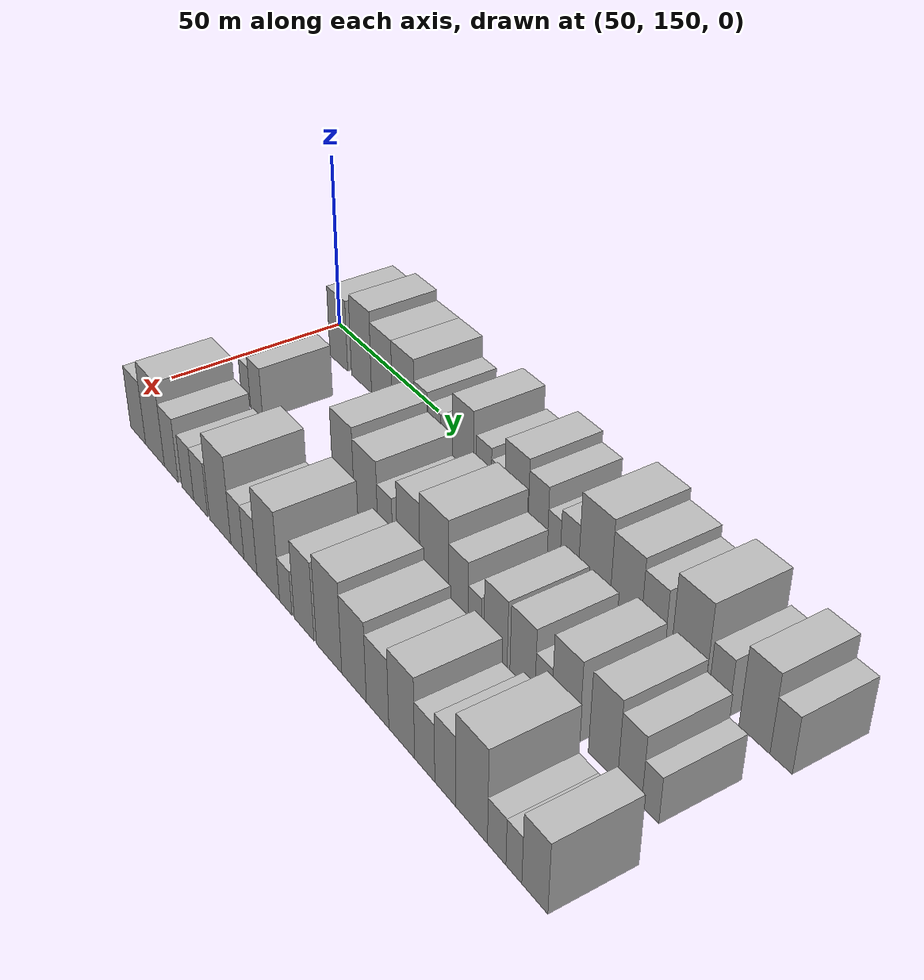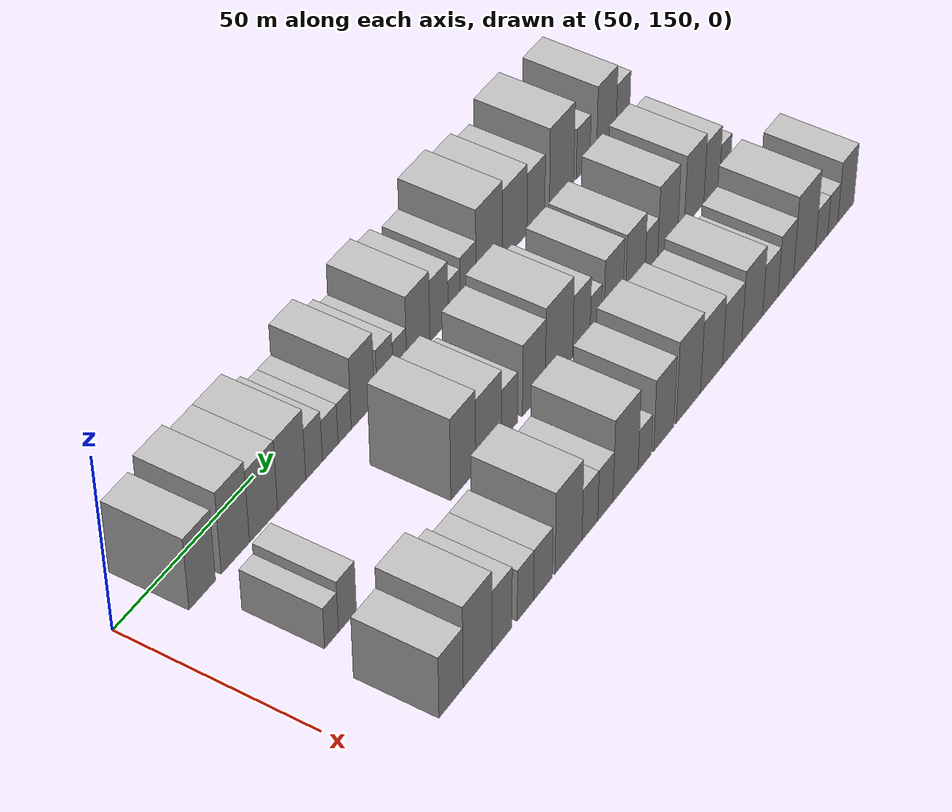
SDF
<sdf version="1.6">
 <world name="default">
  <model name="building_61">
   <static>1</static>
   <pose>50.0000 167.0110 0 0.000000 0.000000 0.000000</pose>
   <link name="link">
    <pose>0 0 10.50 0 0 0</pose>
    <collision name="collision"><geometry><box><size>20.0000 9.3905 21.0000</size></box></geometry></collision>
    <visual name="visual">
     <cast_shadows>0</cast_shadows>
     <geometry><box><size>20.0000 9.3905 21.0000</size></box></geometry>
     <material>
      <script>
       <uri>model://HANNAS_wall/materials/scripts</uri>
       <uri>model://HANNAS_wall/materials/textures</uri>
       <name>vrc/HANNAS_wall</name>
      </script>
     </material>
    </visual>
   </link>
  </model>
  <model name="building_62">
   <static>1</static>
   <pose>50.0000 178.8048 0 0.000000 0.000000 0.000000</pose>
   <link name="link">
    <pose>0 0 12.00 0 0 0</pose>
    <collision name="collision"><geometry><box><size>20.0000 10.1971 24.0000</size></box></geometry></collision>
    <visual name="visual">
     <cast_shadows>0</cast_shadows>
     <geometry><box><size>20.0000 10.1971 24.0000</size></box></geometry>
     <material>
      <script>
       <uri>model://HANNAS_wall/materials/scripts</uri>
       <uri>model://HANNAS_wall/materials/textures</uri>
       <name>vrc/HANNAS_wall</name>
      </script>
     </material>
    </visual>
   </link>
  </model>
  <model name="building_63">
   <static>1</static>
   <pose>50.0000 189.0639 0 0.000000 0.000000 0.000000</pose>
   <link name="link">
    <pose>0 0 10.50 0 0 0</pose>
    <collision name="collision"><geometry><box><size>20.0000 10.3211 21.0000</size></box></geometry></collision>
    <visual name="visual">
     <cast_shadows>0</cast_shadows>
     <geometry><box><size>20.0000 10.3211 21.0000</size></box></geometry>
     <material>
      <script>
       <uri>model://HANNAS_wall/materials/scripts</uri>
       <uri>model://HANNAS_wall/materials/textures</uri>
       <name>vrc/HANNAS_wall</name>
      </script>
     </material>
    </visual>
   </link>
  </model>
  <model name="building_64">
   <static>1</static>
   <pose>50.0000 199.4508 0 0.000000 0.000000 0.000000</pose>
   <link name="link">
    <pose>0 0 10.50 0 0 0</pose>
    <collision name="collision"><geometry><box><size>20.0000 10.4528 21.0000</size></box></geometry></collision>
    <visual name="visual">
     <cast_shadows>0</cast_shadows>
     <geometry><box><size>20.0000 10.4528 21.0000</size></box></geometry>
     <material>
      <script>
       <uri>model://HANNAS_wall/materials/scripts</uri>
       <uri>model://HANNAS_wall/materials/textures</uri>
       <name>vrc/HANNAS_wall</name>
      </script>
     </material>
    </visual>
   </link>
  </model>
  <model name="building_65">
   <static>1</static>
   <pose>50.0000 207.8298 0 0.000000 0.000000 0.000000</pose>
   <link name="link">
    <pose>0 0 7.50 0 0 0</pose>
    <collision name="collision"><geometry><box><size>20.0000 6.3052 15.0000</size></box></geometry></collision>
    <visual name="visual">
     <cast_shadows>0</cast_shadows>
     <geometry><box><size>20.0000 6.3052 15.0000</size></box></geometry>
     <material>
      <script>
       <uri>model://HANNAS_wall/materials/scripts</uri>
       <uri>model://HANNAS_wall/materials/textures</uri>
       <name>vrc/HANNAS_wall</name>
      </script>
     </material>
    </visual>
   </link>
  </model>
  <model name="building_66">
   <static>1</static>
   <pose>50.0000 213.9702 0 0.000000 0.000000 0.000000</pose>
   <link name="link">
    <pose>0 0 6.00 0 0 0</pose>
    <collision name="collision"><geometry><box><size>20.0000 5.9756 12.0000</size></box></geometry></collision>
    <visual name="visual">
     <cast_shadows>0</cast_shadows>
     <geometry><box><size>20.0000 5.9756 12.0000</size></box></geometry>
     <material>
      <script>
       <uri>model://HANNAS_wall/materials/scripts</uri>
       <uri>model://HANNAS_wall/materials/textures</uri>
       <name>vrc/HANNAS_wall</name>
      </script>
     </material>
    </visual>
   </link>
  </model>
  <model name="building_67">
   <static>1</static>
   <pose>50.0000 219.5075 0 0.000000 0.000000 0.000000</pose>
   <link name="link">
    <pose>0 0 6.00 0 0 0</pose>
    <collision name="collision"><geometry><box><size>20.0000 5.0991 12.0000</size></box></geometry></collision>
    <visual name="visual">
     <cast_shadows>0</cast_shadows>
     <geometry><box><size>20.0000 5.0991 12.0000</size></box></geometry>
     <material>
      <script>
       <uri>model://HANNAS_wall/materials/scripts</uri>
       <uri>model://HANNAS_wall/materials/textures</uri>
       <name>vrc/HANNAS_wall</name>
      </script>
     </material>
    </visual>
   </link>
  </model>
  <model name="building_68">
   <static>1</static>
   <pose>50.0000 226.5894 0 0.000000 0.000000 0.000000</pose>
   <link name="link">
    <pose>0 0 10.50 0 0 0</pose>
    <collision name="collision"><geometry><box><size>20.0000 9.0648 21.0000</size></box></geometry></collision>
    <visual name="visual">
     <cast_shadows>0</cast_shadows>
     <geometry><box><size>20.0000 9.0648 21.0000</size></box></geometry>
     <material>
      <script>
       <uri>model://HANNAS_wall/materials/scripts</uri>
       <uri>model://HANNAS_wall/materials/textures</uri>
       <name>vrc/HANNAS_wall</name>
      </script>
     </material>
    </visual>
   </link>
  </model>
  <model name="building_69">
   <static>1</static>
   <pose>50.0000 235.3108 0 0.000000 0.000000 0.000000</pose>
   <link name="link">
    <pose>0 0 7.50 0 0 0</pose>
    <collision name="collision"><geometry><box><size>20.0000 6.3780 15.0000</size></box></geometry></collision>
    <visual name="visual">
     <cast_shadows>0</cast_shadows>
     <geometry><box><size>20.0000 6.3780 15.0000</size></box></geometry>
     <material>
      <script>
       <uri>model://HANNAS_wall/materials/scripts</uri>
       <uri>model://HANNAS_wall/materials/textures</uri>
       <name>vrc/HANNAS_wall</name>
      </script>
     </material>
    </visual>
   </link>
  </model>
  <model name="building_70">
   <static>1</static>
   <pose>50.0000 241.2170 0 0.000000 0.000000 0.000000</pose>
   <link name="link">
    <pose>0 0 6.00 0 0 0</pose>
    <collision name="collision"><geometry><box><size>20.0000 5.4345 12.0000</size></box></geometry></collision>
    <visual name="visual">
     <cast_shadows>0</cast_shadows>
     <geometry><box><size>20.0000 5.4345 12.0000</size></box></geometry>
     <material>
      <script>
       <uri>model://HANNAS_wall/materials/scripts</uri>
       <uri>model://HANNAS_wall/materials/textures</uri>
       <name>vrc/HANNAS_wall</name>
      </script>
     </material>
    </visual>
   </link>
  </model>
  <model name="building_71">
   <static>1</static>
   <pose>50.0000 248.6540 0 0.000000 0.000000 0.000000</pose>
   <link name="link">
    <pose>0 0 10.50 0 0 0</pose>
    <collision name="collision"><geometry><box><size>20.0000 9.4393 21.0000</size></box></geometry></collision>
    <visual name="visual">
     <cast_shadows>0</cast_shadows>
     <geometry><box><size>20.0000 9.4393 21.0000</size></box></geometry>
     <material>
      <script>
       <uri>model://HANNAS_wall/materials/scripts</uri>
       <uri>model://HANNAS_wall/materials/textures</uri>
       <name>vrc/HANNAS_wall</name>
      </script>
     </material>
    </visual>
   </link>
  </model>
  <model name="building_72">
   <static>1</static>
   <pose>50.0000 257.1199 0 0.000000 0.000000 0.000000</pose>
   <link name="link">
    <pose>0 0 9.00 0 0 0</pose>
    <collision name="collision"><geometry><box><size>20.0000 7.4927 18.0000</size></box></geometry></collision>
    <visual name="visual">
     <cast_shadows>0</cast_shadows>
     <geometry><box><size>20.0000 7.4927 18.0000</size></box></geometry>
     <material>
      <script>
       <uri>model://HANNAS_wall/materials/scripts</uri>
       <uri>model://HANNAS_wall/materials/textures</uri>
       <name>vrc/HANNAS_wall</name>
      </script>
     </material>
    </visual>
   </link>
  </model>
  <model name="building_73">
   <static>1</static>
   <pose>50.0000 263.3026 0 0.000000 0.000000 0.000000</pose>
   <link name="link">
    <pose>0 0 6.00 0 0 0</pose>
    <collision name="collision"><geometry><box><size>20.0000 4.8727 12.0000</size></box></geometry></collision>
    <visual name="visual">
     <cast_shadows>0</cast_shadows>
     <geometry><box><size>20.0000 4.8727 12.0000</size></box></geometry>
     <material>
      <script>
       <uri>model://HANNAS_wall/materials/scripts</uri>
       <uri>model://HANNAS_wall/materials/textures</uri>
       <name>vrc/HANNAS_wall</name>
      </script>
     </material>
    </visual>
   </link>
  </model>
  <model name="building_74">
   <static>1</static>
   <pose>50.0000 269.0806 0 0.000000 0.000000 0.000000</pose>
   <link name="link">
    <pose>0 0 7.50 0 0 0</pose>
    <collision name="collision"><geometry><box><size>20.0000 6.6832 15.0000</size></box></geometry></collision>
    <visual name="visual">
     <cast_shadows>0</cast_shadows>
     <geometry><box><size>20.0000 6.6832 15.0000</size></box></geometry>
     <material>
      <script>
       <uri>model://HANNAS_wall/materials/scripts</uri>
       <uri>model://HANNAS_wall/materials/textures</uri>
       <name>vrc/HANNAS_wall</name>
      </script>
     </material>
    </visual>
   </link>
  </model>
  <model name="building_75">
   <static>1</static>
   <pose>50.0000 278.0674 0 0.000000 0.000000 0.000000</pose>
   <link name="link">
    <pose>0 0 12.00 0 0 0</pose>
    <collision name="collision"><geometry><box><size>20.0000 11.2905 24.0000</size></box></geometry></collision>
    <visual name="visual">
     <cast_shadows>0</cast_shadows>
     <geometry><box><size>20.0000 11.2905 24.0000</size></box></geometry>
     <material>
      <script>
       <uri>model://HANNAS_wall/materials/scripts</uri>
       <uri>model://HANNAS_wall/materials/textures</uri>
       <name>vrc/HANNAS_wall</name>
      </script>
     </material>
    </visual>
   </link>
  </model>
  <model name="building_76">
   <static>1</static>
   <pose>50.0000 288.9605 0 0.000000 0.000000 0.000000</pose>
   <link name="link">
    <pose>0 0 10.50 0 0 0</pose>
    <collision name="collision"><geometry><box><size>20.0000 10.4956 21.0000</size></box></geometry></collision>
    <visual name="visual">
     <cast_shadows>0</cast_shadows>
     <geometry><box><size>20.0000 10.4956 21.0000</size></box></geometry>
     <material>
      <script>
       <uri>model://HANNAS_wall/materials/scripts</uri>
       <uri>model://HANNAS_wall/materials/textures</uri>
       <name>vrc/HANNAS_wall</name>
      </script>
     </material>
    </visual>
   </link>
  </model>
  <model name="building_77">
   <static>1</static>
   <pose>50.0000 298.1465 0 0.000000 0.000000 0.000000</pose>
   <link name="link">
    <pose>0 0 9.00 0 0 0</pose>
    <collision name="collision"><geometry><box><size>20.0000 7.8765 18.0000</size></box></geometry></collision>
    <visual name="visual">
     <cast_shadows>0</cast_shadows>
     <geometry><box><size>20.0000 7.8765 18.0000</size></box></geometry>
     <material>
      <script>
       <uri>model://HANNAS_wall/materials/scripts</uri>
       <uri>model://HANNAS_wall/materials/textures</uri>
       <name>vrc/HANNAS_wall</name>
      </script>
     </material>
    </visual>
   </link>
  </model>
  <model name="building_78">
   <static>1</static>
   <pose>50.0000 309.5738 0 0.000000 0.000000 0.000000</pose>
   <link name="link">
    <pose>0 0 12.00 0 0 0</pose>
    <collision name="collision"><geometry><box><size>20.0000 10.9780 24.0000</size></box></geometry></collision>
    <visual name="visual">
     <cast_shadows>0</cast_shadows>
     <geometry><box><size>20.0000 10.9780 24.0000</size></box></geometry>
     <material>
      <script>
       <uri>model://HANNAS_wall/materials/scripts</uri>
       <uri>model://HANNAS_wall/materials/textures</uri>
       <name>vrc/HANNAS_wall</name>
      </script>
     </material>
    </visual>
   </link>
  </model>
  <model name="building_79">
   <static>1</static>
   <pose>50.0000 319.2050 0 0.000000 0.000000 0.000000</pose>
   <link name="link">
    <pose>0 0 7.50 0 0 0</pose>
    <collision name="collision"><geometry><box><size>20.0000 6.2843 15.0000</size></box></geometry></collision>
    <visual name="visual">
     <cast_shadows>0</cast_shadows>
     <geometry><box><size>20.0000 6.2843 15.0000</size></box></geometry>
     <material>
      <script>
       <uri>model://HANNAS_wall/materials/scripts</uri>
       <uri>model://HANNAS_wall/materials/textures</uri>
       <name>vrc/HANNAS_wall</name>
      </script>
     </material>
    </visual>
   </link>
  </model>
  <model name="building_80">
   <static>1</static>
   <pose>50.0000 329.8440 0 0.000000 0.000000 0.000000</pose>
   <link name="link">
    <pose>0 0 10.50 0 0 0</pose>
    <collision name="collision"><geometry><box><size>20.0000 8.9937 21.0000</size></box></geometry></collision>
    <visual name="visual">
     <cast_shadows>0</cast_shadows>
     <geometry><box><size>20.0000 8.9937 21.0000</size></box></geometry>
     <material>
      <script>
       <uri>model://HANNAS_wall/materials/scripts</uri>
       <uri>model://HANNAS_wall/materials/textures</uri>
       <name>vrc/HANNAS_wall</name>
      </script>
     </material>
    </visual>
   </link>
  </model>
  <model name="building_81">
   <static>1</static>
   <pose>50.0000 337.4816 0 0.000000 0.000000 0.000000</pose>
   <link name="link">
    <pose>0 0 7.50 0 0 0</pose>
    <collision name="collision"><geometry><box><size>20.0000 6.2815 15.0000</size></box></geometry></collision>
    <visual name="visual">
     <cast_shadows>0</cast_shadows>
     <geometry><box><size>20.0000 6.2815 15.0000</size></box></geometry>
     <material>
      <script>
       <uri>model://HANNAS_wall/materials/scripts</uri>
       <uri>model://HANNAS_wall/materials/textures</uri>
       <name>vrc/HANNAS_wall</name>
      </script>
     </material>
    </visual>
   </link>
  </model>
  <model name="building_142">
   <static>1</static>
   <pose>79.0000 170.5180 0 0.000000 0.000000 0.000000</pose>
   <link name="link">
    <pose>0 0 6.00 0 0 0</pose>
    <collision name="collision"><geometry><box><size>20.0000 5.0300 12.0000</size></box></geometry></collision>
    <visual name="visual">
     <cast_shadows>0</cast_shadows>
     <geometry><box><size>20.0000 5.0300 12.0000</size></box></geometry>
     <material>
      <script>
       <uri>model://HANNAS_wall/materials/scripts</uri>
       <uri>model://HANNAS_wall/materials/textures</uri>
       <name>vrc/HANNAS_wall</name>
      </script>
     </material>
    </visual>
   </link>
  </model>
  <model name="building_143">
   <static>1</static>
   <pose>79.0000 176.3296 0 0.000000 0.000000 0.000000</pose>
   <link name="link">
    <pose>0 0 7.50 0 0 0</pose>
    <collision name="collision"><geometry><box><size>20.0000 6.5931 15.0000</size></box></geometry></collision>
    <visual name="visual">
     <cast_shadows>0</cast_shadows>
     <geometry><box><size>20.0000 6.5931 15.0000</size></box></geometry>
     <material>
      <script>
       <uri>model://HANNAS_wall/materials/scripts</uri>
       <uri>model://HANNAS_wall/materials/textures</uri>
       <name>vrc/HANNAS_wall</name>
      </script>
     </material>
    </visual>
   </link>
  </model>
  <model name="building_144">
   <static>1</static>
   <pose>79.0000 220.4301 0 0.000000 0.000000 0.000000</pose>
   <link name="link">
    <pose>0 0 12.00 0 0 0</pose>
    <collision name="collision"><geometry><box><size>20.0000 9.8693 24.0000</size></box></geometry></collision>
    <visual name="visual">
     <cast_shadows>0</cast_shadows>
     <geometry><box><size>20.0000 9.8693 24.0000</size></box></geometry>
     <material>
      <script>
       <uri>model://HANNAS_wall/materials/scripts</uri>
       <uri>model://HANNAS_wall/materials/textures</uri>
       <name>vrc/HANNAS_wall</name>
      </script>
     </material>
    </visual>
   </link>
  </model>
  <model name="building_145">
   <static>1</static>
   <pose>79.0000 230.5847 0 0.000000 0.000000 0.000000</pose>
   <link name="link">
    <pose>0 0 10.50 0 0 0</pose>
    <collision name="collision"><geometry><box><size>20.0000 10.4399 21.0000</size></box></geometry></collision>
    <visual name="visual">
     <cast_shadows>0</cast_shadows>
     <geometry><box><size>20.0000 10.4399 21.0000</size></box></geometry>
     <material>
      <script>
       <uri>model://HANNAS_wall/materials/scripts</uri>
       <uri>model://HANNAS_wall/materials/textures</uri>
       <name>vrc/HANNAS_wall</name>
      </script>
     </material>
    </visual>
   </link>
  </model>
  <model name="building_146">
   <static>1</static>
   <pose>79.0000 239.0333 0 0.000000 0.000000 0.000000</pose>
   <link name="link">
    <pose>0 0 7.50 0 0 0</pose>
    <collision name="collision"><geometry><box><size>20.0000 6.4573 15.0000</size></box></geometry></collision>
    <visual name="visual">
     <cast_shadows>0</cast_shadows>
     <geometry><box><size>20.0000 6.4573 15.0000</size></box></geometry>
     <material>
      <script>
       <uri>model://HANNAS_wall/materials/scripts</uri>
       <uri>model://HANNAS_wall/materials/textures</uri>
       <name>vrc/HANNAS_wall</name>
      </script>
     </material>
    </visual>
   </link>
  </model>
  <model name="building_147">
   <static>1</static>
   <pose>79.0000 249.0173 0 0.000000 0.000000 0.000000</pose>
   <link name="link">
    <pose>0 0 10.50 0 0 0</pose>
    <collision name="collision"><geometry><box><size>20.0000 9.5108 21.0000</size></box></geometry></collision>
    <visual name="visual">
     <cast_shadows>0</cast_shadows>
     <geometry><box><size>20.0000 9.5108 21.0000</size></box></geometry>
     <material>
      <script>
       <uri>model://HANNAS_wall/materials/scripts</uri>
       <uri>model://HANNAS_wall/materials/textures</uri>
       <name>vrc/HANNAS_wall</name>
      </script>
     </material>
    </visual>
   </link>
  </model>
  <model name="building_148">
   <static>1</static>
   <pose>79.0000 259.5655 0 0.000000 0.000000 0.000000</pose>
   <link name="link">
    <pose>0 0 12.00 0 0 0</pose>
    <collision name="collision"><geometry><box><size>20.0000 11.5856 24.0000</size></box></geometry></collision>
    <visual name="visual">
     <cast_shadows>0</cast_shadows>
     <geometry><box><size>20.0000 11.5856 24.0000</size></box></geometry>
     <material>
      <script>
       <uri>model://HANNAS_wall/materials/scripts</uri>
       <uri>model://HANNAS_wall/materials/textures</uri>
       <name>vrc/HANNAS_wall</name>
      </script>
     </material>
    </visual>
   </link>
  </model>
  <model name="building_149">
   <static>1</static>
   <pose>79.0000 269.0976 0 0.000000 0.000000 0.000000</pose>
   <link name="link">
    <pose>0 0 9.00 0 0 0</pose>
    <collision name="collision"><geometry><box><size>20.0000 7.4785 18.0000</size></box></geometry></collision>
    <visual name="visual">
     <cast_shadows>0</cast_shadows>
     <geometry><box><size>20.0000 7.4785 18.0000</size></box></geometry>
     <material>
      <script>
       <uri>model://HANNAS_wall/materials/scripts</uri>
       <uri>model://HANNAS_wall/materials/textures</uri>
       <name>vrc/HANNAS_wall</name>
      </script>
     </material>
    </visual>
   </link>
  </model>
  <model name="building_150">
   <static>1</static>
   <pose>79.0000 275.3004 0 0.000000 0.000000 0.000000</pose>
   <link name="link">
    <pose>0 0 6.00 0 0 0</pose>
    <collision name="collision"><geometry><box><size>20.0000 4.9271 12.0000</size></box></geometry></collision>
    <visual name="visual">
     <cast_shadows>0</cast_shadows>
     <geometry><box><size>20.0000 4.9271 12.0000</size></box></geometry>
     <material>
      <script>
       <uri>model://HANNAS_wall/materials/scripts</uri>
       <uri>model://HANNAS_wall/materials/textures</uri>
       <name>vrc/HANNAS_wall</name>
      </script>
     </material>
    </visual>
   </link>
  </model>
  <model name="building_151">
   <static>1</static>
   <pose>79.0000 283.0174 0 0.000000 0.000000 0.000000</pose>
   <link name="link">
    <pose>0 0 9.00 0 0 0</pose>
    <collision name="collision"><geometry><box><size>20.0000 8.5071 18.0000</size></box></geometry></collision>
    <visual name="visual">
     <cast_shadows>0</cast_shadows>
     <geometry><box><size>20.0000 8.5071 18.0000</size></box></geometry>
     <material>
      <script>
       <uri>model://HANNAS_wall/materials/scripts</uri>
       <uri>model://HANNAS_wall/materials/textures</uri>
       <name>vrc/HANNAS_wall</name>
      </script>
     </material>
    </visual>
   </link>
  </model>
  <model name="building_152">
   <static>1</static>
   <pose>79.0000 292.6609 0 0.000000 0.000000 0.000000</pose>
   <link name="link">
    <pose>0 0 9.00 0 0 0</pose>
    <collision name="collision"><geometry><box><size>20.0000 8.7799 18.0000</size></box></geometry></collision>
    <visual name="visual">
     <cast_shadows>0</cast_shadows>
     <geometry><box><size>20.0000 8.7799 18.0000</size></box></geometry>
     <material>
      <script>
       <uri>model://HANNAS_wall/materials/scripts</uri>
       <uri>model://HANNAS_wall/materials/textures</uri>
       <name>vrc/HANNAS_wall</name>
      </script>
     </material>
    </visual>
   </link>
  </model>
  <model name="building_153">
   <static>1</static>
   <pose>79.0000 299.8931 0 0.000000 0.000000 0.000000</pose>
   <link name="link">
    <pose>0 0 6.00 0 0 0</pose>
    <collision name="collision"><geometry><box><size>20.0000 5.6847 12.0000</size></box></geometry></collision>
    <visual name="visual">
     <cast_shadows>0</cast_shadows>
     <geometry><box><size>20.0000 5.6847 12.0000</size></box></geometry>
     <material>
      <script>
       <uri>model://HANNAS_wall/materials/scripts</uri>
       <uri>model://HANNAS_wall/materials/textures</uri>
       <name>vrc/HANNAS_wall</name>
      </script>
     </material>
    </visual>
   </link>
  </model>
  <model name="building_154">
   <static>1</static>
   <pose>79.0000 307.3148 0 0.000000 0.000000 0.000000</pose>
   <link name="link">
    <pose>0 0 10.50 0 0 0</pose>
    <collision name="collision"><geometry><box><size>20.0000 9.1587 21.0000</size></box></geometry></collision>
    <visual name="visual">
     <cast_shadows>0</cast_shadows>
     <geometry><box><size>20.0000 9.1587 21.0000</size></box></geometry>
     <material>
      <script>
       <uri>model://HANNAS_wall/materials/scripts</uri>
       <uri>model://HANNAS_wall/materials/textures</uri>
       <name>vrc/HANNAS_wall</name>
      </script>
     </material>
    </visual>
   </link>
  </model>
  <model name="building_155">
   <static>1</static>
   <pose>79.0000 319.4599 0 0.000000 0.000000 0.000000</pose>
   <link name="link">
    <pose>0 0 10.50 0 0 0</pose>
    <collision name="collision"><geometry><box><size>20.0000 9.1314 21.0000</size></box></geometry></collision>
    <visual name="visual">
     <cast_shadows>0</cast_shadows>
     <geometry><box><size>20.0000 9.1314 21.0000</size></box></geometry>
     <material>
      <script>
       <uri>model://HANNAS_wall/materials/scripts</uri>
       <uri>model://HANNAS_wall/materials/textures</uri>
       <name>vrc/HANNAS_wall</name>
      </script>
     </material>
    </visual>
   </link>
  </model>
  <model name="building_156">
   <static>1</static>
   <pose>79.0000 327.6645 0 0.000000 0.000000 0.000000</pose>
   <link name="link">
    <pose>0 0 9.00 0 0 0</pose>
    <collision name="collision"><geometry><box><size>20.0000 7.2778 18.0000</size></box></geometry></collision>
    <visual name="visual">
     <cast_shadows>0</cast_shadows>
     <geometry><box><size>20.0000 7.2778 18.0000</size></box></geometry>
     <material>
      <script>
       <uri>model://HANNAS_wall/materials/scripts</uri>
       <uri>model://HANNAS_wall/materials/textures</uri>
       <name>vrc/HANNAS_wall</name>
      </script>
     </material>
    </visual>
   </link>
  </model>
  <model name="building_157">
   <static>1</static>
   <pose>79.0000 333.8660 0 0.000000 0.000000 0.000000</pose>
   <link name="link">
    <pose>0 0 6.00 0 0 0</pose>
    <collision name="collision"><geometry><box><size>20.0000 5.1252 12.0000</size></box></geometry></collision>
    <visual name="visual">
     <cast_shadows>0</cast_shadows>
     <geometry><box><size>20.0000 5.1252 12.0000</size></box></geometry>
     <material>
      <script>
       <uri>model://HANNAS_wall/materials/scripts</uri>
       <uri>model://HANNAS_wall/materials/textures</uri>
       <name>vrc/HANNAS_wall</name>
      </script>
     </material>
    </visual>
   </link>
  </model>
  <model name="building_211">
   <static>1</static>
   <pose>108.0000 169.1861 0 0.000000 0.000000 0.000000</pose>
   <link name="link">
    <pose>0 0 9.00 0 0 0</pose>
    <collision name="collision"><geometry><box><size>20.0000 8.9510 18.0000</size></box></geometry></collision>
    <visual name="visual">
     <cast_shadows>0</cast_shadows>
     <geometry><box><size>20.0000 8.9510 18.0000</size></box></geometry>
     <material>
      <script>
       <uri>model://HANNAS_wall/materials/scripts</uri>
       <uri>model://HANNAS_wall/materials/textures</uri>
       <name>vrc/HANNAS_wall</name>
      </script>
     </material>
    </visual>
   </link>
  </model>
  <model name="building_212">
   <static>1</static>
   <pose>108.0000 179.0940 0 0.000000 0.000000 0.000000</pose>
   <link name="link">
    <pose>0 0 12.00 0 0 0</pose>
    <collision name="collision"><geometry><box><size>20.0000 10.8648 24.0000</size></box></geometry></collision>
    <visual name="visual">
     <cast_shadows>0</cast_shadows>
     <geometry><box><size>20.0000 10.8648 24.0000</size></box></geometry>
     <material>
      <script>
       <uri>model://HANNAS_wall/materials/scripts</uri>
       <uri>model://HANNAS_wall/materials/textures</uri>
       <name>vrc/HANNAS_wall</name>
      </script>
     </material>
    </visual>
   </link>
  </model>
  <model name="building_213">
   <static>1</static>
   <pose>108.0000 188.3837 0 0.000000 0.000000 0.000000</pose>
   <link name="link">
    <pose>0 0 9.00 0 0 0</pose>
    <collision name="collision"><geometry><box><size>20.0000 7.7146 18.0000</size></box></geometry></collision>
    <visual name="visual">
     <cast_shadows>0</cast_shadows>
     <geometry><box><size>20.0000 7.7146 18.0000</size></box></geometry>
     <material>
      <script>
       <uri>model://HANNAS_wall/materials/scripts</uri>
       <uri>model://HANNAS_wall/materials/textures</uri>
       <name>vrc/HANNAS_wall</name>
      </script>
     </material>
    </visual>
   </link>
  </model>
  <model name="building_214">
   <static>1</static>
   <pose>108.0000 197.4641 0 0.000000 0.000000 0.000000</pose>
   <link name="link">
    <pose>0 0 7.50 0 0 0</pose>
    <collision name="collision"><geometry><box><size>20.0000 6.4462 15.0000</size></box></geometry></collision>
    <visual name="visual">
     <cast_shadows>0</cast_shadows>
     <geometry><box><size>20.0000 6.4462 15.0000</size></box></geometry>
     <material>
      <script>
       <uri>model://HANNAS_wall/materials/scripts</uri>
       <uri>model://HANNAS_wall/materials/textures</uri>
       <name>vrc/HANNAS_wall</name>
      </script>
     </material>
    </visual>
   </link>
  </model>
  <model name="building_215">
   <static>1</static>
   <pose>108.0000 204.3552 0 0.000000 0.000000 0.000000</pose>
   <link name="link">
    <pose>0 0 7.50 0 0 0</pose>
    <collision name="collision"><geometry><box><size>20.0000 7.3359 15.0000</size></box></geometry></collision>
    <visual name="visual">
     <cast_shadows>0</cast_shadows>
     <geometry><box><size>20.0000 7.3359 15.0000</size></box></geometry>
     <material>
      <script>
       <uri>model://HANNAS_wall/materials/scripts</uri>
       <uri>model://HANNAS_wall/materials/textures</uri>
       <name>vrc/HANNAS_wall</name>
      </script>
     </material>
    </visual>
   </link>
  </model>
  <model name="building_216">
   <static>1</static>
   <pose>108.0000 214.4813 0 0.000000 0.000000 0.000000</pose>
   <link name="link">
    <pose>0 0 12.00 0 0 0</pose>
    <collision name="collision"><geometry><box><size>20.0000 10.9163 24.0000</size></box></geometry></collision>
    <visual name="visual">
     <cast_shadows>0</cast_shadows>
     <geometry><box><size>20.0000 10.9163 24.0000</size></box></geometry>
     <material>
      <script>
       <uri>model://HANNAS_wall/materials/scripts</uri>
       <uri>model://HANNAS_wall/materials/textures</uri>
       <name>vrc/HANNAS_wall</name>
      </script>
     </material>
    </visual>
   </link>
  </model>
  <model name="building_217">
   <static>1</static>
   <pose>108.0000 223.1496 0 0.000000 0.000000 0.000000</pose>
   <link name="link">
    <pose>0 0 7.50 0 0 0</pose>
    <collision name="collision"><geometry><box><size>20.0000 6.4203 15.0000</size></box></geometry></collision>
    <visual name="visual">
     <cast_shadows>0</cast_shadows>
     <geometry><box><size>20.0000 6.4203 15.0000</size></box></geometry>
     <material>
      <script>
       <uri>model://HANNAS_wall/materials/scripts</uri>
       <uri>model://HANNAS_wall/materials/textures</uri>
       <name>vrc/HANNAS_wall</name>
      </script>
     </material>
    </visual>
   </link>
  </model>
  <model name="building_218">
   <static>1</static>
   <pose>108.0000 229.5086 0 0.000000 0.000000 0.000000</pose>
   <link name="link">
    <pose>0 0 7.50 0 0 0</pose>
    <collision name="collision"><geometry><box><size>20.0000 6.2977 15.0000</size></box></geometry></collision>
    <visual name="visual">
     <cast_shadows>0</cast_shadows>
     <geometry><box><size>20.0000 6.2977 15.0000</size></box></geometry>
     <material>
      <script>
       <uri>model://HANNAS_wall/materials/scripts</uri>
       <uri>model://HANNAS_wall/materials/textures</uri>
       <name>vrc/HANNAS_wall</name>
      </script>
     </material>
    </visual>
   </link>
  </model>
  <model name="building_219">
   <static>1</static>
   <pose>108.0000 237.9156 0 0.000000 0.000000 0.000000</pose>
   <link name="link">
    <pose>0 0 12.00 0 0 0</pose>
    <collision name="collision"><geometry><box><size>20.0000 10.5163 24.0000</size></box></geometry></collision>
    <visual name="visual">
     <cast_shadows>0</cast_shadows>
     <geometry><box><size>20.0000 10.5163 24.0000</size></box></geometry>
     <material>
      <script>
       <uri>model://HANNAS_wall/materials/scripts</uri>
       <uri>model://HANNAS_wall/materials/textures</uri>
       <name>vrc/HANNAS_wall</name>
      </script>
     </material>
    </visual>
   </link>
  </model>
  <model name="building_220">
   <static>1</static>
   <pose>108.0000 245.9698 0 0.000000 0.000000 0.000000</pose>
   <link name="link">
    <pose>0 0 6.00 0 0 0</pose>
    <collision name="collision"><geometry><box><size>20.0000 5.5921 12.0000</size></box></geometry></collision>
    <visual name="visual">
     <cast_shadows>0</cast_shadows>
     <geometry><box><size>20.0000 5.5921 12.0000</size></box></geometry>
     <material>
      <script>
       <uri>model://HANNAS_wall/materials/scripts</uri>
       <uri>model://HANNAS_wall/materials/textures</uri>
       <name>vrc/HANNAS_wall</name>
      </script>
     </material>
    </visual>
   </link>
  </model>
  <model name="building_221">
   <static>1</static>
   <pose>108.0000 254.1120 0 0.000000 0.000000 0.000000</pose>
   <link name="link">
    <pose>0 0 10.50 0 0 0</pose>
    <collision name="collision"><geometry><box><size>20.0000 8.6923 21.0000</size></box></geometry></collision>
    <visual name="visual">
     <cast_shadows>0</cast_shadows>
     <geometry><box><size>20.0000 8.6923 21.0000</size></box></geometry>
     <material>
      <script>
       <uri>model://HANNAS_wall/materials/scripts</uri>
       <uri>model://HANNAS_wall/materials/textures</uri>
       <name>vrc/HANNAS_wall</name>
      </script>
     </material>
    </visual>
   </link>
  </model>
  <model name="building_222">
   <static>1</static>
   <pose>108.0000 264.7805 0 0.000000 0.000000 0.000000</pose>
   <link name="link">
    <pose>0 0 12.00 0 0 0</pose>
    <collision name="collision"><geometry><box><size>20.0000 10.6448 24.0000</size></box></geometry></collision>
    <visual name="visual">
     <cast_shadows>0</cast_shadows>
     <geometry><box><size>20.0000 10.6448 24.0000</size></box></geometry>
     <material>
      <script>
       <uri>model://HANNAS_wall/materials/scripts</uri>
       <uri>model://HANNAS_wall/materials/textures</uri>
       <name>vrc/HANNAS_wall</name>
      </script>
     </material>
    </visual>
   </link>
  </model>
  <model name="building_223">
   <static>1</static>
   <pose>108.0000 275.0283 0 0.000000 0.000000 0.000000</pose>
   <link name="link">
    <pose>0 0 10.50 0 0 0</pose>
    <collision name="collision"><geometry><box><size>20.0000 9.8508 21.0000</size></box></geometry></collision>
    <visual name="visual">
     <cast_shadows>0</cast_shadows>
     <geometry><box><size>20.0000 9.8508 21.0000</size></box></geometry>
     <material>
      <script>
       <uri>model://HANNAS_wall/materials/scripts</uri>
       <uri>model://HANNAS_wall/materials/textures</uri>
       <name>vrc/HANNAS_wall</name>
      </script>
     </material>
    </visual>
   </link>
  </model>
  <model name="building_224">
   <static>1</static>
   <pose>108.0000 284.2904 0 0.000000 0.000000 0.000000</pose>
   <link name="link">
    <pose>0 0 9.00 0 0 0</pose>
    <collision name="collision"><geometry><box><size>20.0000 8.6733 18.0000</size></box></geometry></collision>
    <visual name="visual">
     <cast_shadows>0</cast_shadows>
     <geometry><box><size>20.0000 8.6733 18.0000</size></box></geometry>
     <material>
      <script>
       <uri>model://HANNAS_wall/materials/scripts</uri>
       <uri>model://HANNAS_wall/materials/textures</uri>
       <name>vrc/HANNAS_wall</name>
      </script>
     </material>
    </visual>
   </link>
  </model>
  <model name="building_225">
   <static>1</static>
   <pose>108.0000 293.4086 0 0.000000 0.000000 0.000000</pose>
   <link name="link">
    <pose>0 0 10.50 0 0 0</pose>
    <collision name="collision"><geometry><box><size>20.0000 9.5632 21.0000</size></box></geometry></collision>
    <visual name="visual">
     <cast_shadows>0</cast_shadows>
     <geometry><box><size>20.0000 9.5632 21.0000</size></box></geometry>
     <material>
      <script>
       <uri>model://HANNAS_wall/materials/scripts</uri>
       <uri>model://HANNAS_wall/materials/textures</uri>
       <name>vrc/HANNAS_wall</name>
      </script>
     </material>
    </visual>
   </link>
  </model>
  <model name="building_226">
   <static>1</static>
   <pose>108.0000 301.7890 0 0.000000 0.000000 0.000000</pose>
   <link name="link">
    <pose>0 0 7.50 0 0 0</pose>
    <collision name="collision"><geometry><box><size>20.0000 7.1977 15.0000</size></box></geometry></collision>
    <visual name="visual">
     <cast_shadows>0</cast_shadows>
     <geometry><box><size>20.0000 7.1977 15.0000</size></box></geometry>
     <material>
      <script>
       <uri>model://HANNAS_wall/materials/scripts</uri>
       <uri>model://HANNAS_wall/materials/textures</uri>
       <name>vrc/HANNAS_wall</name>
      </script>
     </material>
    </visual>
   </link>
  </model>
  <model name="building_227">
   <static>1</static>
   <pose>108.0000 309.0197 0 0.000000 0.000000 0.000000</pose>
   <link name="link">
    <pose>0 0 9.00 0 0 0</pose>
    <collision name="collision"><geometry><box><size>20.0000 7.2636 18.0000</size></box></geometry></collision>
    <visual name="visual">
     <cast_shadows>0</cast_shadows>
     <geometry><box><size>20.0000 7.2636 18.0000</size></box></geometry>
     <material>
      <script>
       <uri>model://HANNAS_wall/materials/scripts</uri>
       <uri>model://HANNAS_wall/materials/textures</uri>
       <name>vrc/HANNAS_wall</name>
      </script>
     </material>
    </visual>
   </link>
  </model>
  <model name="building_228">
   <static>1</static>
   <pose>108.0000 317.9170 0 0.000000 0.000000 0.000000</pose>
   <link name="link">
    <pose>0 0 12.00 0 0 0</pose>
    <collision name="collision"><geometry><box><size>20.0000 10.5311 24.0000</size></box></geometry></collision>
    <visual name="visual">
     <cast_shadows>0</cast_shadows>
     <geometry><box><size>20.0000 10.5311 24.0000</size></box></geometry>
     <material>
      <script>
       <uri>model://HANNAS_wall/materials/scripts</uri>
       <uri>model://HANNAS_wall/materials/textures</uri>
       <name>vrc/HANNAS_wall</name>
      </script>
     </material>
    </visual>
   </link>
  </model>
  <model name="building_229">
   <static>1</static>
   <pose>108.0000 326.1393 0 0.000000 0.000000 0.000000</pose>
   <link name="link">
    <pose>0 0 6.00 0 0 0</pose>
    <collision name="collision"><geometry><box><size>20.0000 5.9134 12.0000</size></box></geometry></collision>
    <visual name="visual">
     <cast_shadows>0</cast_shadows>
     <geometry><box><size>20.0000 5.9134 12.0000</size></box></geometry>
     <material>
      <script>
       <uri>model://HANNAS_wall/materials/scripts</uri>
       <uri>model://HANNAS_wall/materials/textures</uri>
       <name>vrc/HANNAS_wall</name>
      </script>
     </material>
    </visual>
   </link>
  </model>
  <model name="building_230">
   <static>1</static>
   <pose>108.0000 331.5713 0 0.000000 0.000000 0.000000</pose>
   <link name="link">
    <pose>0 0 6.00 0 0 0</pose>
    <collision name="collision"><geometry><box><size>20.0000 4.9506 12.0000</size></box></geometry></collision>
    <visual name="visual">
     <cast_shadows>0</cast_shadows>
     <geometry><box><size>20.0000 4.9506 12.0000</size></box></geometry>
     <material>
      <script>
       <uri>model://HANNAS_wall/materials/scripts</uri>
       <uri>model://HANNAS_wall/materials/textures</uri>
       <name>vrc/HANNAS_wall</name>
      </script>
     </material>
    </visual>
   </link>
  </model>
  <model name="building_231">
   <static>1</static>
   <pose>108.0000 337.9940 0 0.000000 0.000000 0.000000</pose>
   <link name="link">
    <pose>0 0 9.00 0 0 0</pose>
    <collision name="collision"><geometry><box><size>20.0000 7.8948 18.0000</size></box></geometry></collision>
    <visual name="visual">
     <cast_shadows>0</cast_shadows>
     <geometry><box><size>20.0000 7.8948 18.0000</size></box></geometry>
     <material>
      <script>
       <uri>model://HANNAS_wall/materials/scripts</uri>
       <uri>model://HANNAS_wall/materials/textures</uri>
       <name>vrc/HANNAS_wall</name>
      </script>
     </material>
    </visual>
   </link>
  </model>
 </world>
</sdf>
